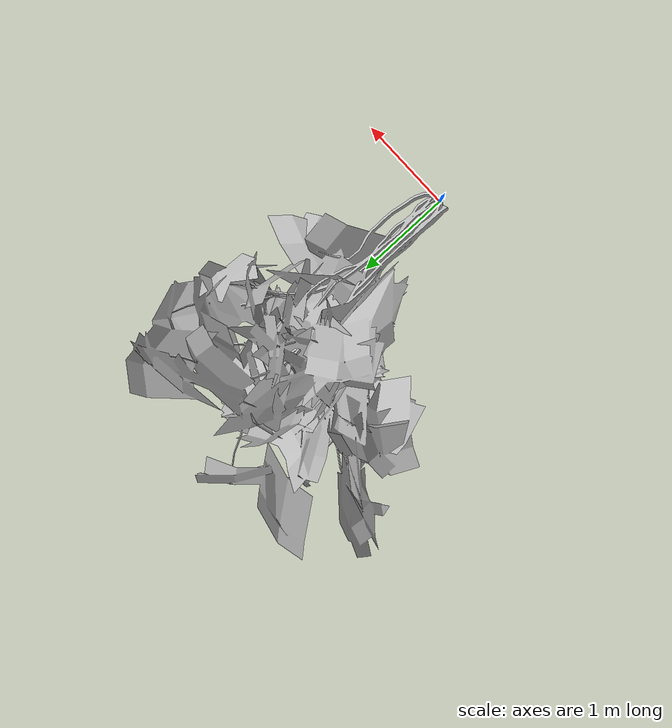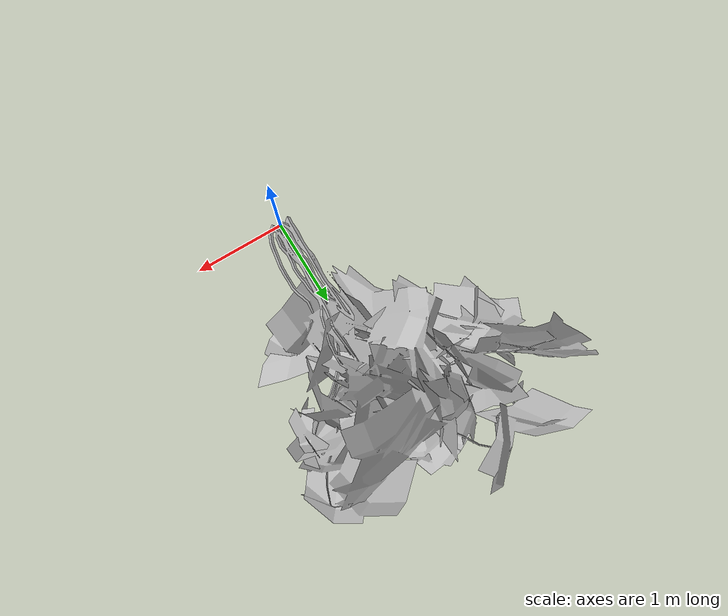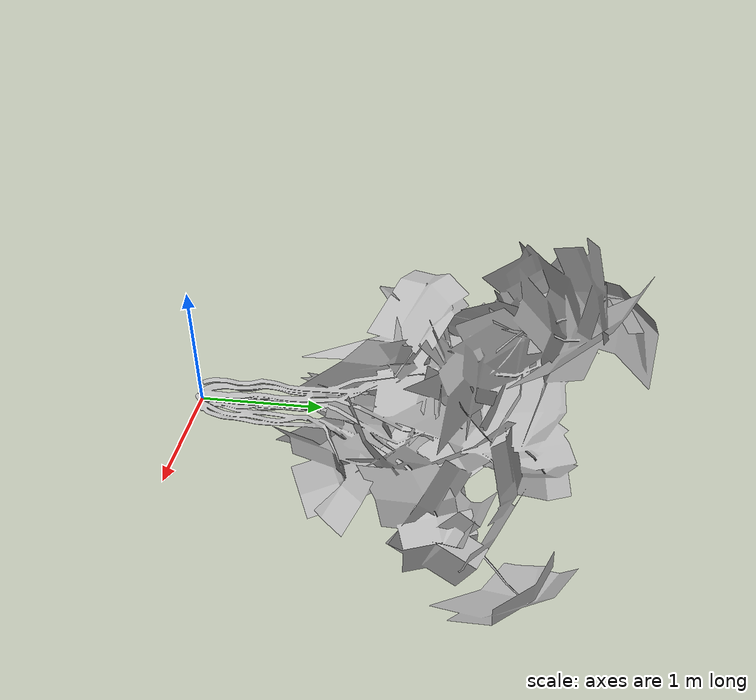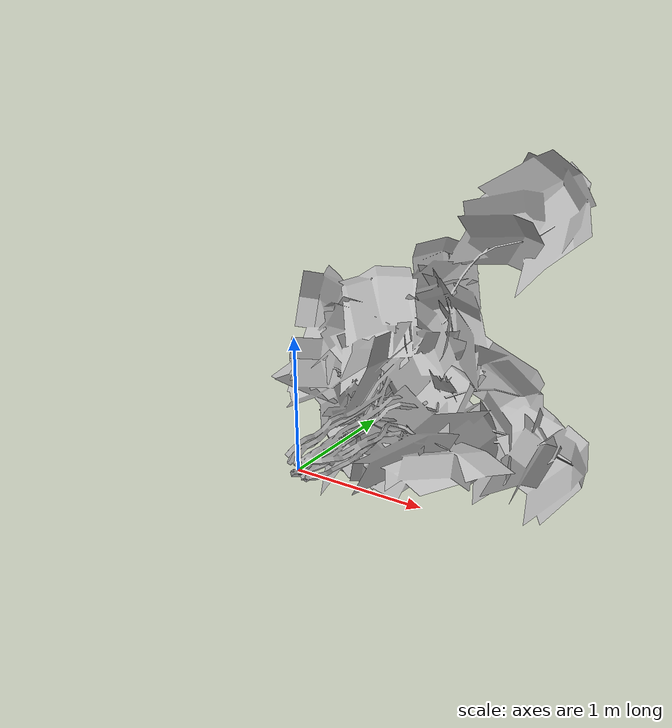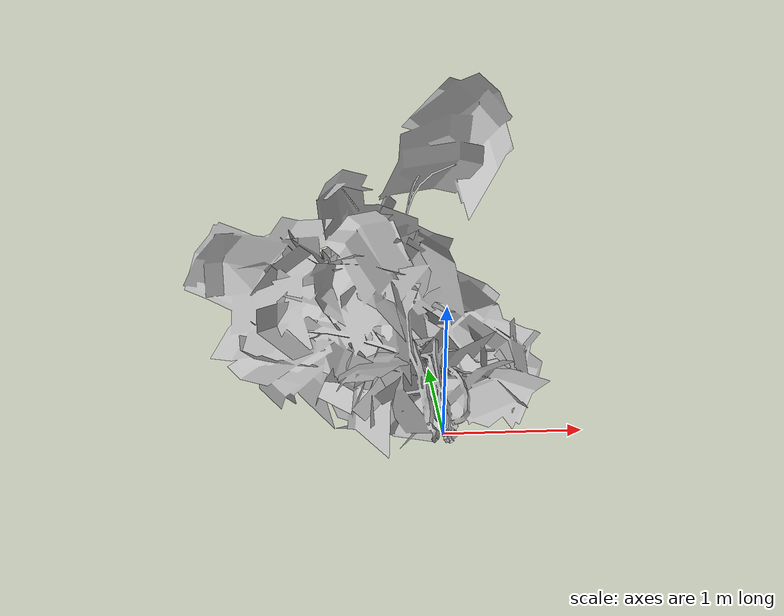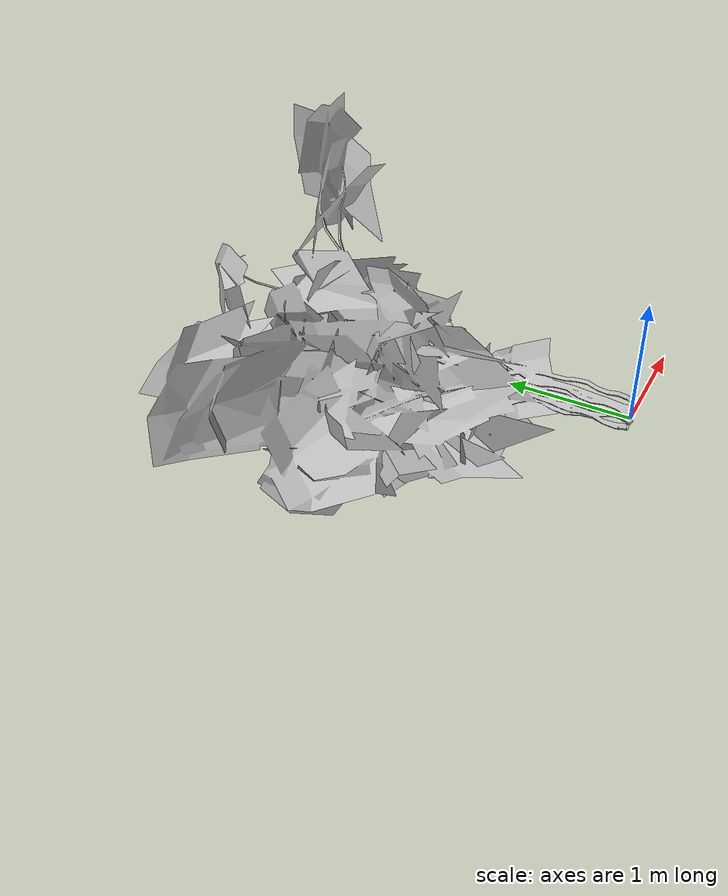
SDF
<sdf version="1.6">
    <world name="default">
    <!-- Rubicon model -->
    <include>
        <uri>file://home/patrick/vegmap/src/planner/worlds/rubicon/model.sdf</uri>
        <pose>0 0 0 0 0 0</pose>
        <scale>0.1 0.1 0.1</scale>
    </include>

    <collision>
        <geometry>
            <box><size>0.5 0.5 0.5</size></box>
        </geometry>
    </collision>

    </world>
</sdf>

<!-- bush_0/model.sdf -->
<sdf version="1.5">
  <model name="Bush 0">
    <static>true</static>
    <pose frame=''>0 0 0 1.57079 0 0</pose>
    <link name="link">
      <pose frame=''>0 0 0 0 0 0</pose>
      <collision name="collision">
        <geometry>
          <mesh>
            <scale>5 5 5</scale>
            <uri>model://gazebo_vegetation/models/bush_0/meshes/bush_0.obj</uri>
          </mesh>
        </geometry>
      </collision>
      <visual name="visual">
        <geometry>
          <mesh>

            <scale>5 5 5</scale>
            <uri>model://gazebo_vegetation/models/bush_0/meshes/bush_0.obj</uri>
          </mesh>
        </geometry>
      </visual>
    </link>
  </model>
</sdf>
